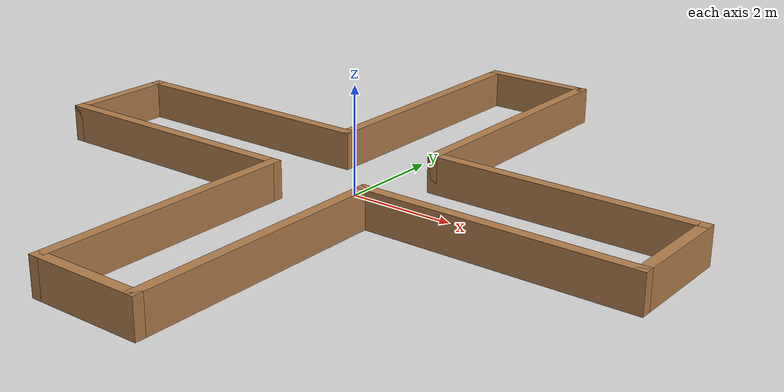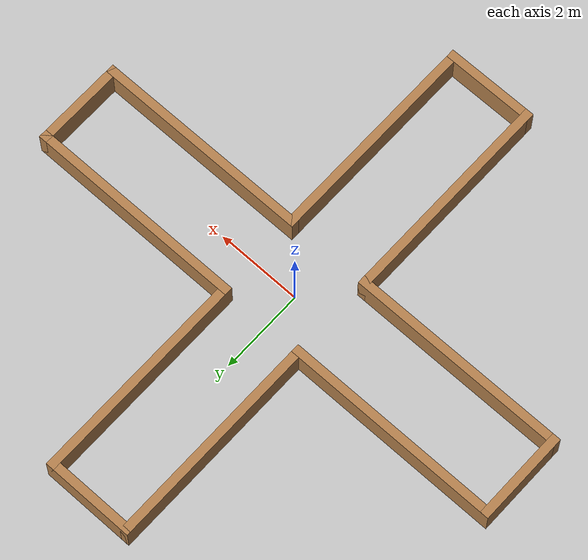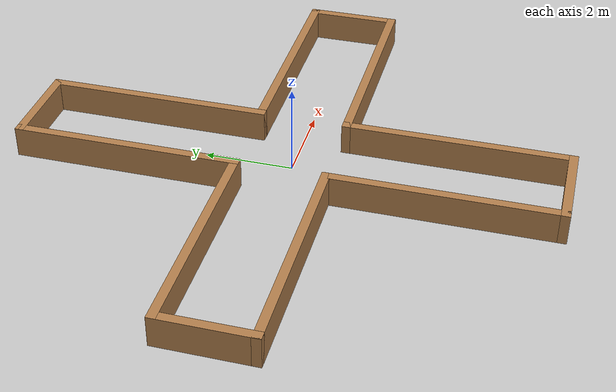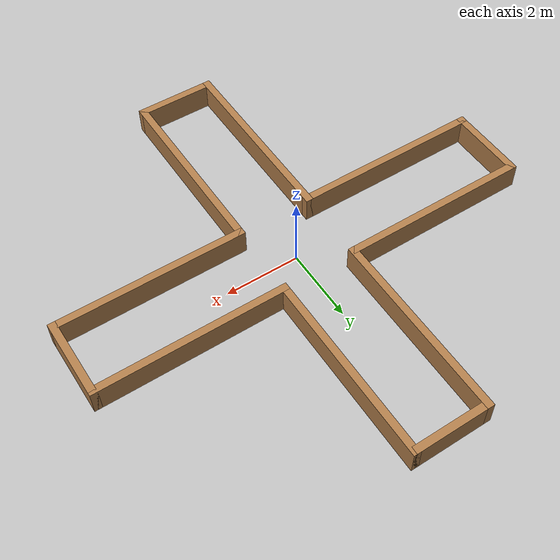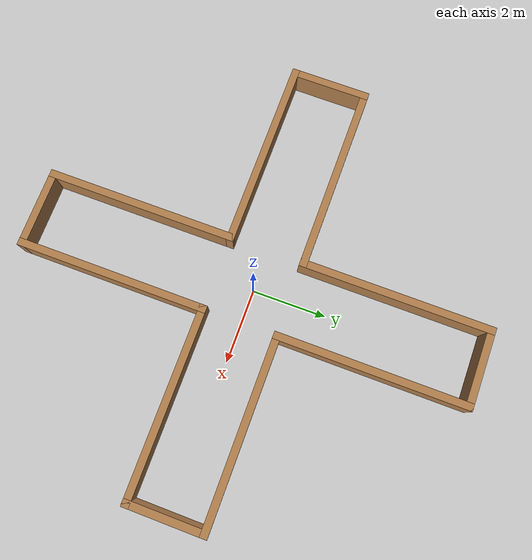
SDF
<sdf version="1.4">
 <world name="default">
  <scene>
   <ambient>0.4 0.4 0.4 1</ambient>
   <background>0.7 0.7 0.7 1</background>
   <shadows>true</shadows>
   <sky><clouds><speed>15</speed></clouds></sky>
  </scene>
  <include><uri>model://sun</uri></include>
  <include><uri>model://Cruz</uri></include>
  <physics type="ode">
   <real_time_update_rate>1000.0</real_time_update_rate>
   <max_step_size>0.001</max_step_size>
   <real_time_factor>1</real_time_factor>
   <ode>
    <solver>
     <type>quick</type>
     <iters>150</iters>
     <precon_iters>0</precon_iters>
     <sor>1.400000</sor>
     <use_dynamic_moi_rescaling>1</use_dynamic_moi_rescaling>
    </solver>
    <constraints>
     <cfm>0.00001</cfm>
     <erp>0.2</erp>
     <contact_max_correcting_vel>2000.000000</contact_max_correcting_vel>
     <contact_surface_layer>0.01000</contact_surface_layer>
    </constraints>
   </ode>
  </physics>
 </world>
</sdf>

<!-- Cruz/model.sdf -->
<sdf version='1.7'>
  <model name='Cruz'>
    <pose>0.00025 0 0 0 -0 0</pose>
    <link name='Wall_0'>
      <collision name='Wall_0_Collision'>
        <geometry>
          <box>
            <size>2.2 0.2 0.7</size>
          </box>
        </geometry>
        <pose>0 0 0.35 0 -0 0</pose>
      </collision>
      <visual name='Wall_0_Visual'>
        <pose>0 0 0.35 0 -0 0</pose>
        <geometry>
          <box>
            <size>2.2 0.2 0.7</size>
          </box>
        </geometry>
        <material>
          <script>
            <uri>file://media/materials/scripts/gazebo.material</uri>
            <name>Gazebo/Wood</name>
          </script>
          <ambient>1 1 1 1</ambient>
        </material>
        <meta>
          <layer>0</layer>
        </meta>
      </visual>
      <pose>-6.00025 0 0 0 -0 1.5708</pose>
    </link>
    <link name='Wall_10'>
      <collision name='Wall_10_Collision'>
        <geometry>
          <box>
            <size>5.2 0.2 0.7</size>
          </box>
        </geometry>
        <pose>0 0 0.35 0 -0 0</pose>
      </collision>
      <visual name='Wall_10_Visual'>
        <pose>0 0 0.35 0 -0 0</pose>
        <geometry>
          <box>
            <size>5.2 0.2 0.7</size>
          </box>
        </geometry>
        <material>
          <script>
            <uri>file://media/materials/scripts/gazebo.material</uri>
            <name>Gazebo/Wood</name>
          </script>
          <ambient>1 1 1 1</ambient>
        </material>
        <meta>
          <layer>0</layer>
        </meta>
      </visual>
      <pose>-1.00025 3.5 0 0 -0 1.5708</pose>
    </link>
    <link name='Wall_11'>
      <collision name='Wall_11_Collision'>
        <geometry>
          <box>
            <size>2.2 0.2 0.7</size>
          </box>
        </geometry>
        <pose>0 0 0.35 0 -0 0</pose>
      </collision>
      <visual name='Wall_11_Visual'>
        <pose>0 0 0.35 0 -0 0</pose>
        <geometry>
          <box>
            <size>2.2 0.2 0.7</size>
          </box>
        </geometry>
        <material>
          <script>
            <uri>file://media/materials/scripts/gazebo.material</uri>
            <name>Gazebo/Wood</name>
          </script>
          <ambient>1 1 1 1</ambient>
        </material>
        <meta>
          <layer>0</layer>
        </meta>
      </visual>
      <pose>-0.00025 6 0 0 -0 0</pose>
    </link>
    <link name='Wall_12'>
      <collision name='Wall_12_Collision'>
        <geometry>
          <box>
            <size>5.2 0.2 0.7</size>
          </box>
        </geometry>
        <pose>0 0 0.35 0 -0 0</pose>
      </collision>
      <visual name='Wall_12_Visual'>
        <pose>0 0 0.35 0 -0 0</pose>
        <geometry>
          <box>
            <size>5.2 0.2 0.7</size>
          </box>
        </geometry>
        <material>
          <script>
            <uri>file://media/materials/scripts/gazebo.material</uri>
            <name>Gazebo/Wood</name>
          </script>
          <ambient>1 1 1 1</ambient>
        </material>
        <meta>
          <layer>0</layer>
        </meta>
      </visual>
      <pose>0.99975 3.5 0 0 -0 -1.5708</pose>
    </link>
    <link name='Wall_13'>
      <collision name='Wall_13_Collision'>
        <geometry>
          <box>
            <size>5.2 0.2 0.7</size>
          </box>
        </geometry>
        <pose>0 0 0.35 0 -0 0</pose>
      </collision>
      <visual name='Wall_13_Visual'>
        <pose>0 0 0.35 0 -0 0</pose>
        <geometry>
          <box>
            <size>5.2 0.2 0.7</size>
          </box>
        </geometry>
        <material>
          <script>
            <uri>file://media/materials/scripts/gazebo.material</uri>
            <name>Gazebo/Wood</name>
          </script>
          <ambient>1 1 1 1</ambient>
        </material>
        <meta>
          <layer>0</layer>
        </meta>
      </visual>
      <pose>3.49975 1 0 0 -0 0</pose>
    </link>
    <link name='Wall_14'>
      <collision name='Wall_14_Collision'>
        <geometry>
          <box>
            <size>2.2 0.2 0.7</size>
          </box>
        </geometry>
        <pose>0 0 0.35 0 -0 0</pose>
      </collision>
      <visual name='Wall_14_Visual'>
        <pose>0 0 0.35 0 -0 0</pose>
        <geometry>
          <box>
            <size>2.2 0.2 0.7</size>
          </box>
        </geometry>
        <material>
          <script>
            <uri>file://media/materials/scripts/gazebo.material</uri>
            <name>Gazebo/Wood</name>
          </script>
          <ambient>1 1 1 1</ambient>
        </material>
        <meta>
          <layer>0</layer>
        </meta>
      </visual>
      <pose>5.99975 0 0 0 -0 -1.5708</pose>
    </link>
    <link name='Wall_15'>
      <collision name='Wall_15_Collision'>
        <geometry>
          <box>
            <size>5.201 0.2 0.7</size>
          </box>
        </geometry>
        <pose>0 0 0.35 0 -0 0</pose>
      </collision>
      <visual name='Wall_15_Visual'>
        <pose>0 0 0.35 0 -0 0</pose>
        <geometry>
          <box>
            <size>5.201 0.2 0.7</size>
          </box>
        </geometry>
        <material>
          <script>
            <uri>file://media/materials/scripts/gazebo.material</uri>
            <name>Gazebo/Wood</name>
          </script>
          <ambient>1 1 1 1</ambient>
        </material>
        <meta>
          <layer>0</layer>
        </meta>
      </visual>
      <pose>3.49975 -1 0 0 -0 3.14159</pose>
    </link>
    <link name='Wall_16'>
      <collision name='Wall_16_Collision'>
        <geometry>
          <box>
            <size>5.2 0.2 0.7</size>
          </box>
        </geometry>
        <pose>0 0 0.35 0 -0 0</pose>
      </collision>
      <visual name='Wall_16_Visual'>
        <pose>0 0 0.35 0 -0 0</pose>
        <geometry>
          <box>
            <size>5.2 0.2 0.7</size>
          </box>
        </geometry>
        <material>
          <script>
            <uri>file://media/materials/scripts/gazebo.material</uri>
            <name>Gazebo/Wood</name>
          </script>
          <ambient>1 1 1 1</ambient>
        </material>
        <meta>
          <layer>0</layer>
        </meta>
      </visual>
      <pose>0.99975 -3.5 0 0 -0 -1.5708</pose>
    </link>
    <link name='Wall_17'>
      <collision name='Wall_17_Collision'>
        <geometry>
          <box>
            <size>2.2 0.2 0.7</size>
          </box>
        </geometry>
        <pose>0 0 0.35 0 -0 0</pose>
      </collision>
      <visual name='Wall_17_Visual'>
        <pose>0 0 0.35 0 -0 0</pose>
        <geometry>
          <box>
            <size>2.2 0.2 0.7</size>
          </box>
        </geometry>
        <material>
          <script>
            <uri>file://media/materials/scripts/gazebo.material</uri>
            <name>Gazebo/Wood</name>
          </script>
          <ambient>1 1 1 1</ambient>
        </material>
        <meta>
          <layer>0</layer>
        </meta>
      </visual>
      <pose>-0.00025 -6 0 0 -0 3.14159</pose>
    </link>
    <link name='Wall_18'>
      <collision name='Wall_18_Collision'>
        <geometry>
          <box>
            <size>5.2 0.2 0.7</size>
          </box>
        </geometry>
        <pose>0 0 0.35 0 -0 0</pose>
      </collision>
      <visual name='Wall_18_Visual'>
        <pose>0 0 0.35 0 -0 0</pose>
        <geometry>
          <box>
            <size>5.2 0.2 0.7</size>
          </box>
        </geometry>
        <material>
          <script>
            <uri>file://media/materials/scripts/gazebo.material</uri>
            <name>Gazebo/Wood</name>
          </script>
          <ambient>1 1 1 1</ambient>
        </material>
        <meta>
          <layer>0</layer>
        </meta>
      </visual>
      <pose>-1.00025 -3.5 0 0 -0 1.5708</pose>
    </link>
    <link name='Wall_2'>
      <collision name='Wall_2_Collision'>
        <geometry>
          <box>
            <size>5.2 0.2 0.7</size>
          </box>
        </geometry>
        <pose>0 0 0.35 0 -0 0</pose>
      </collision>
      <visual name='Wall_2_Visual'>
        <pose>0 0 0.35 0 -0 0</pose>
        <geometry>
          <box>
            <size>5.2 0.2 0.7</size>
          </box>
        </geometry>
        <material>
          <script>
            <uri>file://media/materials/scripts/gazebo.material</uri>
            <name>Gazebo/Wood</name>
          </script>
          <ambient>1 1 1 1</ambient>
        </material>
        <meta>
          <layer>0</layer>
        </meta>
      </visual>
      <pose>-3.50025 1 0 0 -0 3.14159</pose>
    </link>
    <link name='Wall_6'>
      <collision name='Wall_6_Collision'>
        <geometry>
          <box>
            <size>5.2 0.2 0.7</size>
          </box>
        </geometry>
        <pose>0 0 0.35 0 -0 0</pose>
      </collision>
      <visual name='Wall_6_Visual'>
        <pose>0 0 0.35 0 -0 0</pose>
        <geometry>
          <box>
            <size>5.2 0.2 0.7</size>
          </box>
        </geometry>
        <material>
          <script>
            <uri>file://media/materials/scripts/gazebo.material</uri>
            <name>Gazebo/Wood</name>
          </script>
          <ambient>1 1 1 1</ambient>
        </material>
        <meta>
          <layer>0</layer>
        </meta>
      </visual>
      <pose>-3.50025 -1 0 0 -0 0</pose>
    </link>
    <static>1</static>
  </model>
</sdf>
